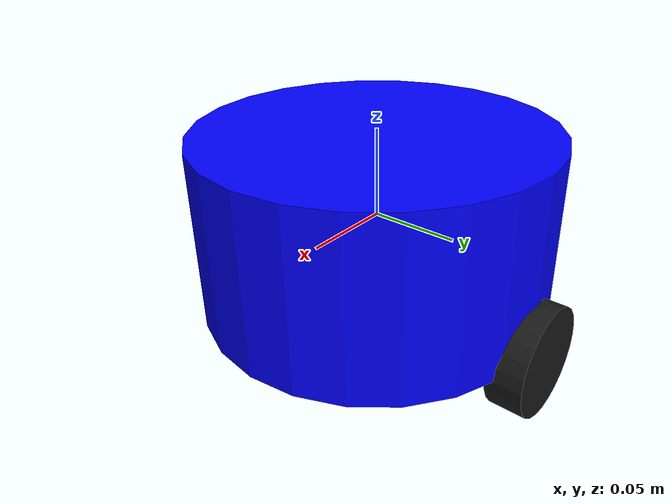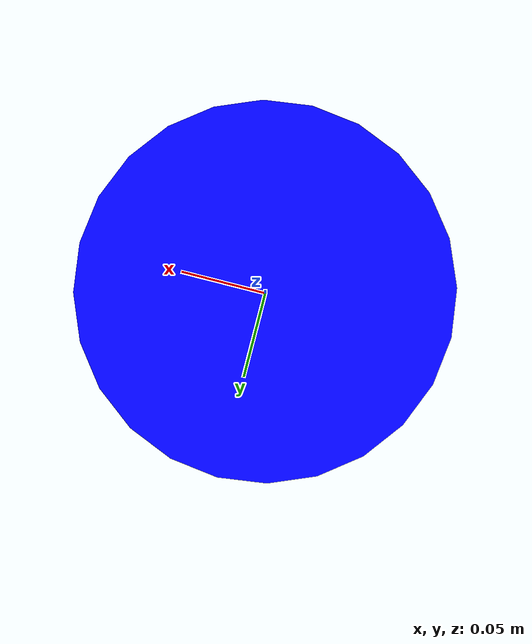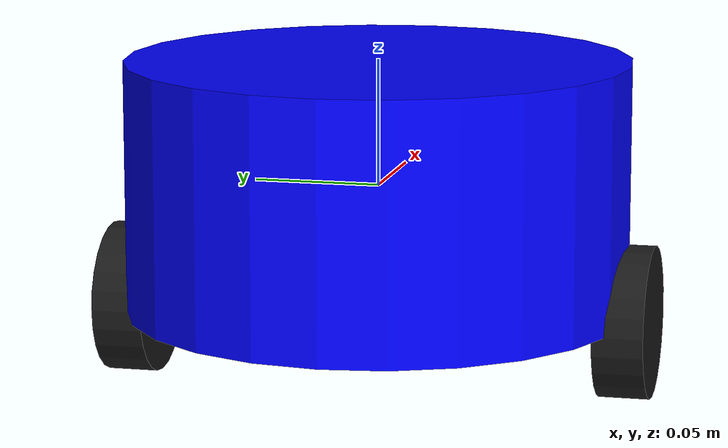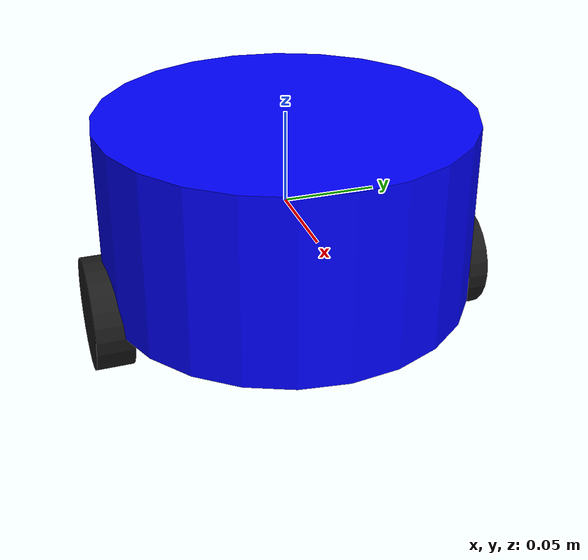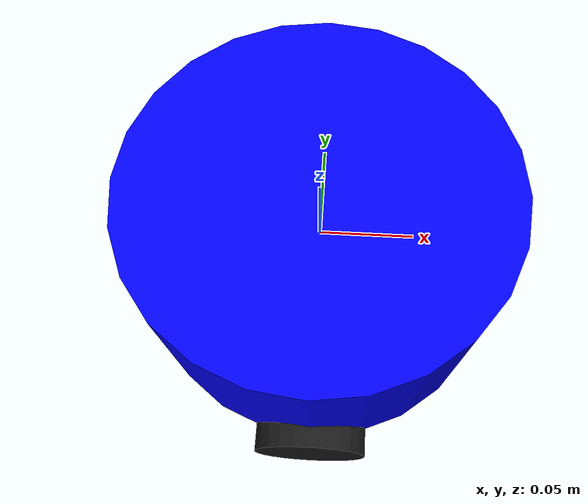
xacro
<?xml version="1.0"?>
<robot xmlns:xacro="http://www.ros.org/wiki/xacro">
<!-- Material Definitions -->
<material name="black">
<color rgba="0.1 0.1 0.1 1" />
</material>
<material name="blue">
<color rgba="0 0 1 1" />
</material>
<!-- Robot Properties -->
<xacro:property name="base_radius" value="0.1" />
<xacro:property name="base_height" value="0.1" /> <!-- Increased base height -->
<xacro:property name="wheel_radius" value="0.03" />
<xacro:property name="wheel_thickness" value="0.02" />
<!-- Base Link -->
<link name="base_link">
<visual>
<geometry>
<cylinder radius="${base_radius}" length="${base_height}" />
</geometry>
<material name="blue" /> <!-- Changed color to blue -->
</visual>
<collision>
<geometry>
<cylinder radius="${base_radius}" length="${base_height}" />
</geometry>
</collision>
<xacro:cylinder_inertia m="1.0" r="${base_radius}" h="${base_height}" xyz="0 0 0" rpy="0 0 0" />
</link>
<!-- Wheels -->
<xacro:macro name="wheel" params="prefix x_offset y_offset">
<link name="${prefix}_wheel_link">
<visual>
<geometry>
<cylinder radius="${wheel_radius}" length="${wheel_thickness}" />
</geometry>
<origin xyz="0 0 0" rpy="1.5708 0 0" />
<material name="black" />
</visual>
<collision>
<geometry>
<cylinder radius="${wheel_radius}" length="${wheel_thickness}" />
</geometry>
<origin xyz="0 0 0" rpy="1.5708 0 0" />
</collision>
<xacro:cylinder_inertia m="0.2" r="${wheel_radius}" h="${wheel_thickness}" xyz="0 0 0" rpy="0 0 0" />
</link>
<joint name="${prefix}_wheel_joint" type="continuous">
<parent link="base_link" />
<child link="${prefix}_wheel_link" />
<origin xyz="${x_offset} ${y_offset} ${-base_height / 2}" rpy="0 0 0" />
<axis xyz="0 1 0" />
</joint>
</xacro:macro>
<xacro:wheel prefix="left" x_offset="0" y_offset="${base_radius}" />
<xacro:wheel prefix="right" x_offset="0" y_offset="-${base_radius}" />
</robot>
